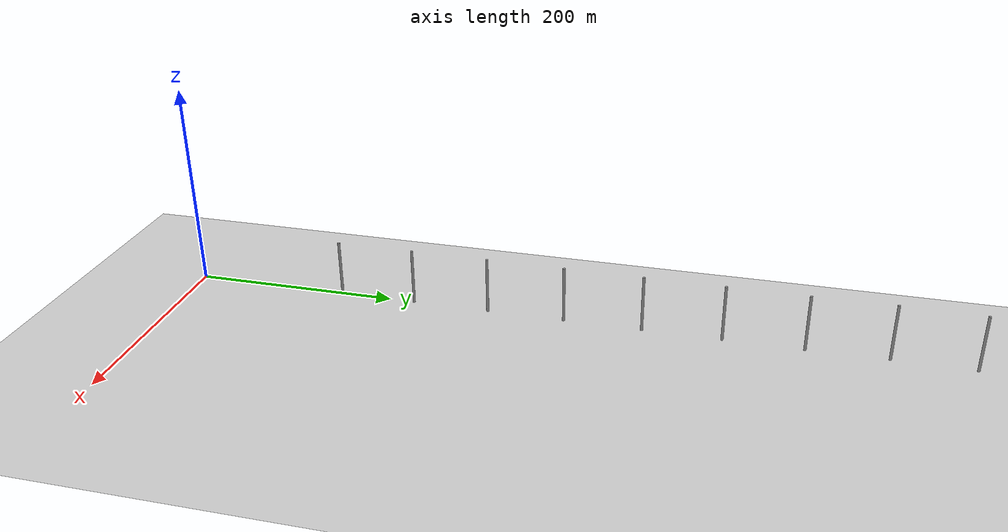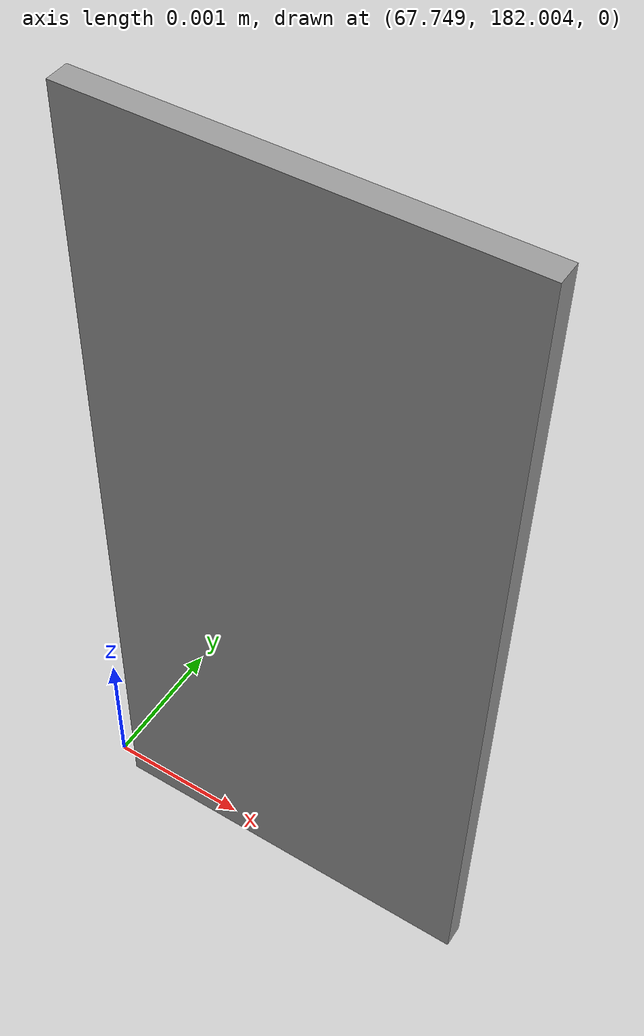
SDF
<sdf version="1.7">
 <world name="default">
  <scene>
   <shadows>0</shadows>
   <sky><time>10</time></sky>
   <ambient>0.4 0.4 0.4 1</ambient>
   <background>0.7 0.7 0.7 1</background>
  </scene>
  <physics type="ode">
   <ode>
    <solver>
     <type>quick</type>
     <iters>100</iters>
     <sor>1</sor>
     <use_dynamic_moi_rescaling>0</use_dynamic_moi_rescaling>
    </solver>
    <constraints>
     <cfm>0</cfm>
     <erp>0.9</erp>
     <contact_max_correcting_vel>0.1</contact_max_correcting_vel>
     <contact_surface_layer>0</contact_surface_layer>
    </constraints>
   </ode>
   <real_time_update_rate>0</real_time_update_rate>
   <max_step_size>0.0025</max_step_size>
   <real_time_factor>1</real_time_factor>
  </physics>
  <light name="sun" type="directional">
   <pose>0 0 10 0 -0 0</pose>
   <diffuse>0.8 0.8 0.8 1</diffuse>
   <specular>0.2 0.2 0.2 1</specular>
   <attenuation>
    <range>1000</range>
    <constant>0.9</constant>
    <linear>0.01</linear>
    <quadratic>0.001</quadratic>
   </attenuation>
   <direction>-0.5 0.1 -0.9</direction>
   <spot><inner_angle>0</inner_angle><outer_angle>0</outer_angle><falloff>0</falloff></spot>
  </light>
  <model name="ground_plane">
   <static>1</static>
   <link name="link">
    <collision name="collision">
     <geometry><plane><normal>0 0 1</normal><size>5000 5000</size></plane></geometry>
     <surface><friction><ode><mu>1</mu><mu2>1</mu2></ode></friction></surface>
    </collision>
    <visual name="runway">
     <pose>0 0 0.005 0 0 -1.5707</pose>
     <cast_shadows>0</cast_shadows>
     <geometry><plane><normal>0 0 1</normal><size>1829 45</size></plane></geometry>
     <geometry><mesh><uri>/home/dhruv/Desktop/SAA_dev/algorithm/terrain.dae</uri></mesh></geometry>
     <material>
      <script><uri>file://media/materials/scripts/gazebo.material</uri><name>Gazebo/Runway</name></script>
     </material>
    </visual>
    <visual name="grass">
     <pose>0 0 -0.1 0 -0 0</pose>
     <cast_shadows>0</cast_shadows>
     <geometry><plane><normal>0 0 1</normal><size>5000 5000</size></plane></geometry>
     <material>
      <script><uri>file://media/materials/scripts/gazebo.material</uri><name>Gazebo/Grass</name></script>
     </material>
    </visual>
   </link>
  </model>
  <gravity>0 0 -9.8</gravity>
  <magnetic_field>6e-06 2.3e-05 -4.2e-05</magnetic_field>
  <atmosphere type="adiabatic"/>
  <spherical_coordinates>
   <surface_model>EARTH_WGS84</surface_model>
   <latitude_deg>0</latitude_deg>
   <longitude_deg>0</longitude_deg>
   <elevation>0</elevation>
   <heading_deg>0</heading_deg>
  </spherical_coordinates>
  <model name="unit_cylinder_clone_1">
   <pose>-0.008781 149.981 28.1274 1.2e-05 6e-06 0.257655</pose>
   <link name="link">
    <inertial>
     <mass>1</mass>
     <inertia><ixx>0.145833</ixx><ixy>0</ixy><ixz>0</ixz><iyy>0.145833</iyy><iyz>0</iyz><izz>0.125</izz></inertia>
    </inertial>
    <collision name="collision">
     <geometry><cylinder><radius>1.30653</radius><length>56.2549</length></cylinder></geometry>
    </collision>
    <visual name="visual">
     <geometry><cylinder><radius>1.30653</radius><length>56.2549</length></cylinder></geometry>
     <material>
      <script><name>Gazebo/Grey</name><uri>file://media/materials/scripts/gazebo.material</uri></script>
     </material>
    </visual>
   </link>
  </model>
  <model name="unit_box">
   <pose>67.7505 182.004 0.002892 0 -0 0</pose>
   <link name="link">
    <inertial>
     <mass>1</mass>
     <inertia>
      <ixx>0.166667</ixx>
      <ixy>0</ixy>
      <ixz>0</ixz>
      <iyy>0.166667</iyy>
      <iyz>0</iyz>
      <izz>0.166667</izz>
     </inertia>
    </inertial>
    <collision name="collision">
     <geometry><box><size>0.0026443 0.000159802 0.00578323</size></box></geometry>
    </collision>
    <visual name="visual">
     <geometry><box><size>0.0026443 0.000159802 0.00578323</size></box></geometry>
     <material>
      <script><name>Gazebo/Grey</name><uri>file://media/materials/scripts/gazebo.material</uri></script>
     </material>
    </visual>
   </link>
  </model>
  <model name="unit_cylinder_clone_1_clone_0">
   <pose>-0.019643 224.957 28.1274 1.2e-05 6e-06 0.255955</pose>
   <link name="link">
    <inertial>
     <mass>1</mass>
     <inertia><ixx>0.145833</ixx><ixy>0</ixy><ixz>0</ixz><iyy>0.145833</iyy><iyz>0</iyz><izz>0.125</izz></inertia>
    </inertial>
    <collision name="collision">
     <geometry><cylinder><radius>1.30653</radius><length>56.2549</length></cylinder></geometry>
    </collision>
    <visual name="visual">
     <geometry><cylinder><radius>1.30653</radius><length>56.2549</length></cylinder></geometry>
     <material>
      <script><name>Gazebo/Grey</name><uri>file://media/materials/scripts/gazebo.material</uri></script>
     </material>
    </visual>
   </link>
  </model>
  <model name="unit_cylinder_clone_1_clone_1">
   <pose>-0.018568 299.983 28.1274 1.2e-05 7e-06 0.252336</pose>
   <link name="link">
    <inertial>
     <mass>1</mass>
     <inertia><ixx>0.145833</ixx><ixy>0</ixy><ixz>0</ixz><iyy>0.145833</iyy><iyz>0</iyz><izz>0.125</izz></inertia>
    </inertial>
    <collision name="collision">
     <geometry><cylinder><radius>1.30653</radius><length>56.2549</length></cylinder></geometry>
    </collision>
    <visual name="visual">
     <geometry><cylinder><radius>1.30653</radius><length>56.2549</length></cylinder></geometry>
     <material>
      <script><name>Gazebo/Grey</name><uri>file://media/materials/scripts/gazebo.material</uri></script>
     </material>
    </visual>
   </link>
  </model>
  <model name="unit_cylinder_clone_1_clone_2">
   <pose>-0.015487 374.986 28.1274 1.1e-05 7e-06 0.237946</pose>
   <link name="link">
    <inertial>
     <mass>1</mass>
     <inertia><ixx>0.145833</ixx><ixy>0</ixy><ixz>0</ixz><iyy>0.145833</iyy><iyz>0</iyz><izz>0.125</izz></inertia>
    </inertial>
    <collision name="collision">
     <geometry><cylinder><radius>1.30653</radius><length>56.2549</length></cylinder></geometry>
    </collision>
    <visual name="visual">
     <geometry><cylinder><radius>1.30653</radius><length>56.2549</length></cylinder></geometry>
     <material>
      <script><name>Gazebo/Grey</name><uri>file://media/materials/scripts/gazebo.material</uri></script>
     </material>
    </visual>
   </link>
  </model>
  <model name="unit_cylinder_clone_1_clone_3">
   <pose>-0.014834 449.988 28.1274 1.1e-05 7e-06 0.242952</pose>
   <link name="link">
    <inertial>
     <mass>1</mass>
     <inertia><ixx>0.145833</ixx><ixy>0</ixy><ixz>0</ixz><iyy>0.145833</iyy><iyz>0</iyz><izz>0.125</izz></inertia>
    </inertial>
    <collision name="collision">
     <geometry><cylinder><radius>1.30653</radius><length>56.2549</length></cylinder></geometry>
    </collision>
    <visual name="visual">
     <geometry><cylinder><radius>1.30653</radius><length>56.2549</length></cylinder></geometry>
     <material>
      <script><name>Gazebo/Grey</name><uri>file://media/materials/scripts/gazebo.material</uri></script>
     </material>
    </visual>
   </link>
  </model>
  <model name="unit_cylinder_clone_1_clone_4">
   <pose>-0.013774 524.99 28.1274 1.2e-05 7e-06 0.237123</pose>
   <link name="link">
    <inertial>
     <mass>1</mass>
     <inertia><ixx>0.145833</ixx><ixy>0</ixy><ixz>0</ixz><iyy>0.145833</iyy><iyz>0</iyz><izz>0.125</izz></inertia>
    </inertial>
    <collision name="collision">
     <geometry><cylinder><radius>1.30653</radius><length>56.2549</length></cylinder></geometry>
    </collision>
    <visual name="visual">
     <geometry><cylinder><radius>1.30653</radius><length>56.2549</length></cylinder></geometry>
     <material>
      <script><name>Gazebo/Grey</name><uri>file://media/materials/scripts/gazebo.material</uri></script>
     </material>
    </visual>
   </link>
  </model>
  <model name="unit_cylinder_clone_1_clone_5">
   <pose>-0.012101 599.991 28.1274 1.1e-05 7e-06 0.227731</pose>
   <link name="link">
    <inertial>
     <mass>1</mass>
     <inertia><ixx>0.145833</ixx><ixy>0</ixy><ixz>0</ixz><iyy>0.145833</iyy><iyz>0</iyz><izz>0.125</izz></inertia>
    </inertial>
    <collision name="collision">
     <geometry><cylinder><radius>1.30653</radius><length>56.2549</length></cylinder></geometry>
    </collision>
    <visual name="visual">
     <geometry><cylinder><radius>1.30653</radius><length>56.2549</length></cylinder></geometry>
     <material>
      <script><name>Gazebo/Grey</name><uri>file://media/materials/scripts/gazebo.material</uri></script>
     </material>
    </visual>
   </link>
  </model>
  <model name="unit_cylinder_clone_1_clone_6">
   <pose>-1.56003 674.993 28.1274 1.1e-05 7e-06 0.228976</pose>
   <link name="link">
    <inertial>
     <mass>1</mass>
     <inertia><ixx>0.145833</ixx><ixy>0</ixy><ixz>0</ixz><iyy>0.145833</iyy><iyz>0</iyz><izz>0.125</izz></inertia>
    </inertial>
    <collision name="collision">
     <geometry><cylinder><radius>1.30653</radius><length>56.2549</length></cylinder></geometry>
    </collision>
    <visual name="visual">
     <geometry><cylinder><radius>1.30653</radius><length>56.2549</length></cylinder></geometry>
     <material>
      <script><name>Gazebo/Grey</name><uri>file://media/materials/scripts/gazebo.material</uri></script>
     </material>
    </visual>
   </link>
  </model>
  <model name="unit_cylinder_clone_1_clone_8">
   <pose>-0.000796 749.998 28.1274 1.1e-05 7e-06 0.212338</pose>
   <link name="link">
    <inertial>
     <mass>1</mass>
     <inertia><ixx>0.145833</ixx><ixy>0</ixy><ixz>0</ixz><iyy>0.145833</iyy><iyz>0</iyz><izz>0.125</izz></inertia>
    </inertial>
    <collision name="collision">
     <geometry><cylinder><radius>1.30653</radius><length>56.2549</length></cylinder></geometry>
    </collision>
    <visual name="visual">
     <geometry><cylinder><radius>1.30653</radius><length>56.2549</length></cylinder></geometry>
     <material>
      <script><name>Gazebo/Grey</name><uri>file://media/materials/scripts/gazebo.material</uri></script>
     </material>
    </visual>
   </link>
  </model>
 </world>
</sdf>
